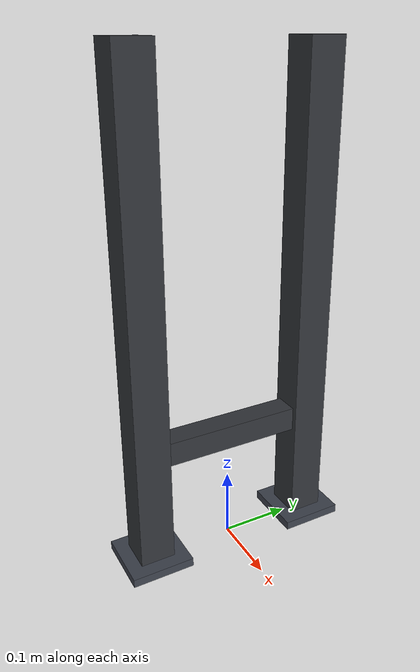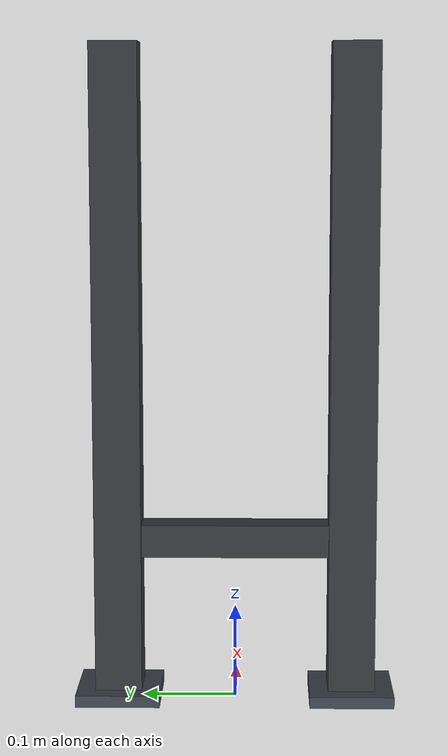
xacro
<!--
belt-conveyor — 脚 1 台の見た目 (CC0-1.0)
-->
<?xml version="1.0"?>
<robot xmlns:xacro="http://www.ros.org/wiki/xacro" name="belt-conveyor-stand">
  <xacro:arg name="height" default="0.75"/>
  <xacro:arg name="belt_thickness" default="0.05"/>
  <xacro:arg name="width" default="0.3"/>
  <xacro:arg name="leg" default="0.05"/>

  <xacro:property name="h" value="${$(arg height) - $(arg belt_thickness)}"/>
  <xacro:property name="w" value="$(arg width)"/>
  <xacro:property name="lg" value="$(arg leg)"/>

  <material name="steel"><color rgba="0.20 0.21 0.23 1"/></material>
  <material name="foot"><color rgba="0.24 0.26 0.30 1"/></material>

  <link name="stand"/>

  <xacro:macro name="box_part" params="name size xyz mat">
    <link name="${name}">
      <visual>
        <origin xyz="${xyz}"/>
        <geometry><box size="${size}"/></geometry>
        <material name="${mat}"/>
      </visual>
    </link>
    <joint name="j_${name}" type="fixed"><parent link="stand"/><child link="${name}"/></joint>
  </xacro:macro>

  <xacro:macro name="side" params="tag sign">
    <xacro:box_part name="leg_${tag}" size="${lg} ${lg} ${h}"
                    xyz="0 ${sign * (w/2 - lg/2)} ${h/2}" mat="steel"/>
    <xacro:box_part name="foot_${tag}" size="${lg*1.8} ${lg*1.8} ${lg/4}"
                    xyz="0 ${sign * (w/2 - lg/2)} ${lg/8}" mat="foot"/>
  </xacro:macro>

  <xacro:side tag="l" sign="1"/>
  <xacro:side tag="r" sign="-1"/>
  <!-- 貫: 2 本の脚をつなぐ -->
  <xacro:box_part name="tie" size="${lg*0.7} ${w - lg} ${lg*0.7}" xyz="0 0 ${h*0.25}" mat="steel"/>
</robot>
